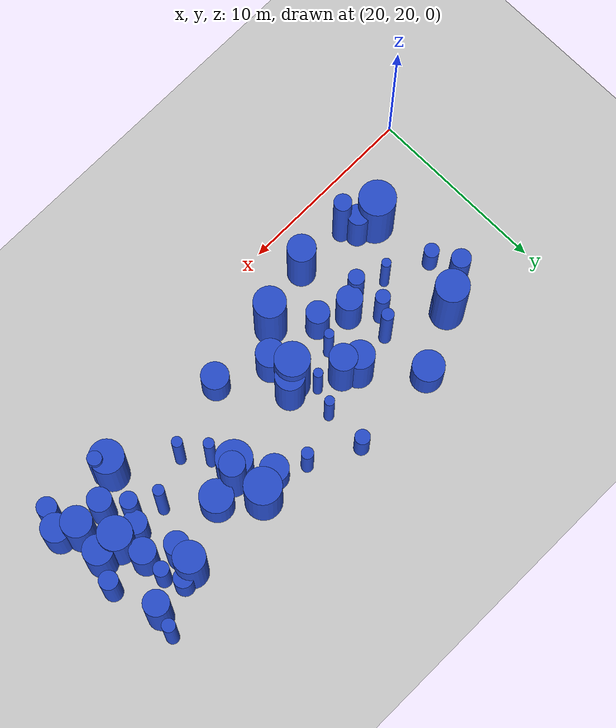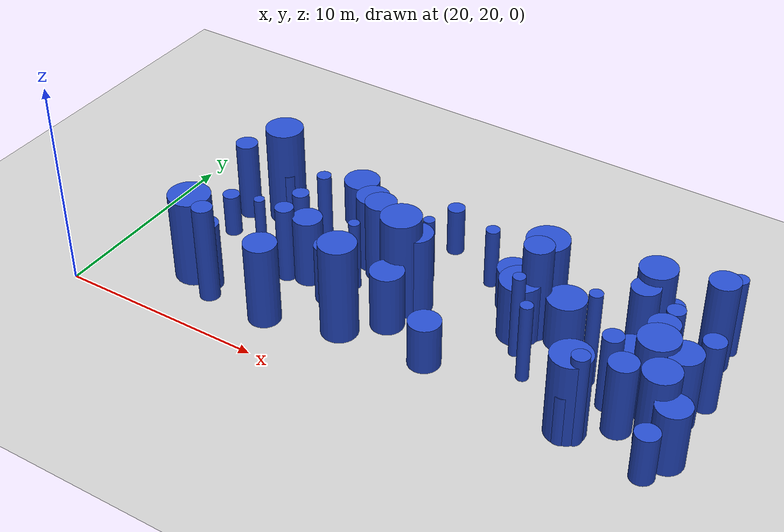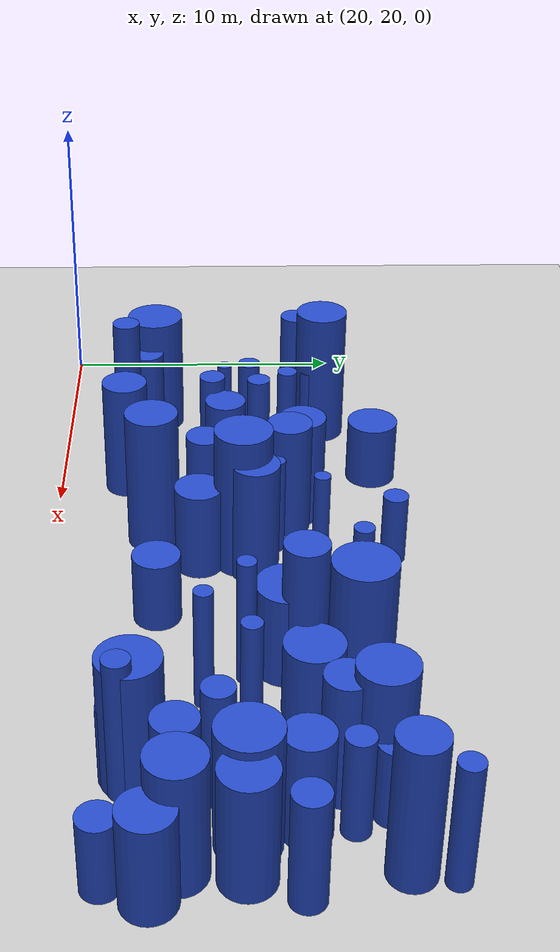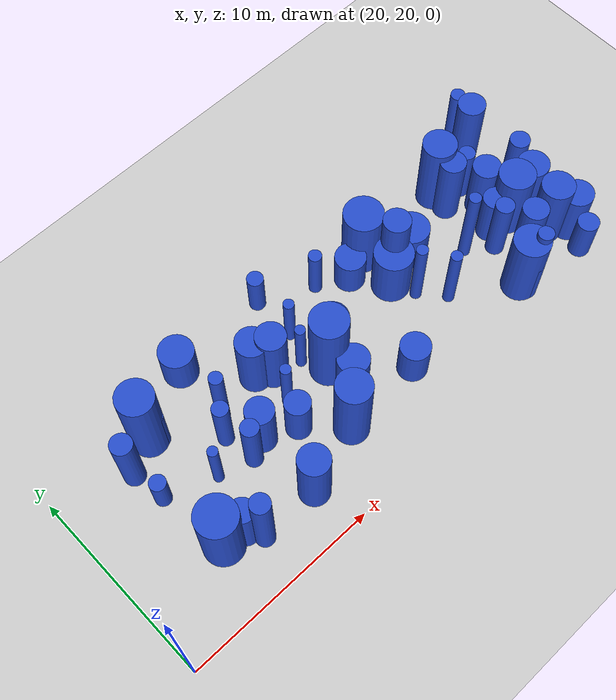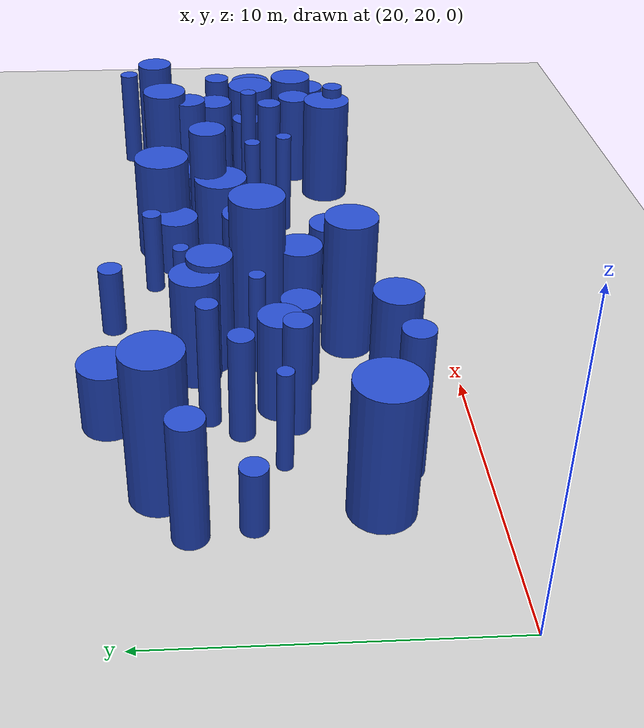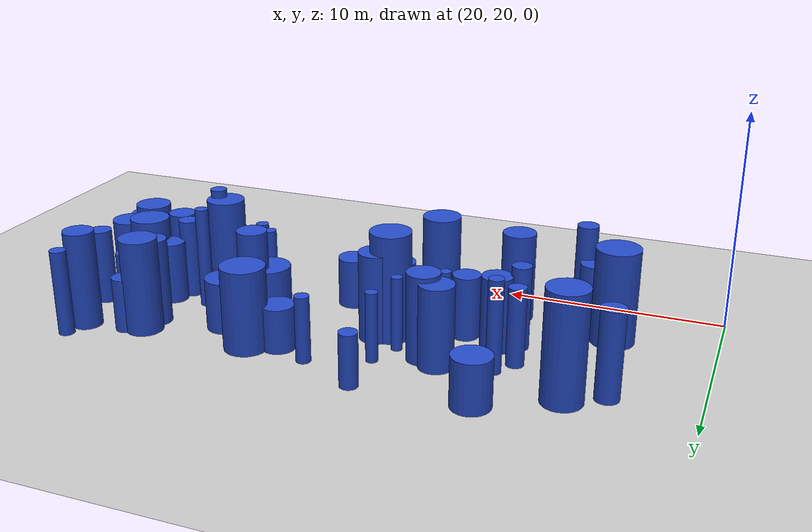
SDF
<sdf version="1.6">
 <world name="default">
  <model name="ground_plane">
   <static>1</static>
   <link name="link">
    <collision name="collision">
     <geometry><plane><normal>0 0 1</normal><size>100 100</size></plane></geometry>
     <surface><friction><ode><mu>100</mu><mu2>50</mu2></ode></friction></surface>
    </collision>
    <visual name="visual">
     <cast_shadows>0</cast_shadows>
     <geometry><plane><normal>0 0 1</normal><size>100 100</size></plane></geometry>
     <material>
      <script><uri>file://media/materials/scripts/gazebo.material</uri><name>Gazebo/Grey</name></script>
     </material>
    </visual>
   </link>
  </model>
  <model name="18">
   <static>0</static>
   <link name="link">
    <inertial>
     <mass>2</mass>
     <inertia>
      <ixx>0.856917</ixx>
      <ixy>0</ixy>
      <ixz>0</ixz>
      <iyy>0.856917</iyy>
      <iyz>0</iyz>
      <izz>0.164802</izz>
     </inertia>
    </inertial>
    <collision name="collision">
     <geometry><cylinder><length>2.15571</length><radius>0.405958</radius></cylinder></geometry>
     <surface><contact><collide_without_contact>1</collide_without_contact></contact></surface>
    </collision>
    <visual name="visual">
     <geometry><cylinder><length>2.15571</length><radius>0.405958</radius></cylinder></geometry>
     <material>
      <script><uri>file://media/materials/scripts/gazebo.material</uri><name>Gazebo/Blue</name></script>
     </material>
    </visual>
    <gravity>0</gravity>
   </link>
   <pose>23.9671 26.7785 1.07786 0 -0 0</pose>
  </model>
  <model name="27">
   <static>0</static>
   <link name="link">
    <inertial>
     <mass>2</mass>
     <inertia><ixx>3.49238</ixx><ixy>0</ixy><ixz>0</ixz><iyy>3.49238</iyy><iyz>0</iyz><izz>0.155393</izz></inertia>
    </inertial>
    <collision name="collision">
     <geometry><cylinder><length>4.52638</length><radius>0.394199</radius></cylinder></geometry>
     <surface><contact><collide_without_contact>1</collide_without_contact></contact></surface>
    </collision>
    <visual name="visual">
     <geometry><cylinder><length>4.52638</length><radius>0.394199</radius></cylinder></geometry>
     <material>
      <script><uri>file://media/materials/scripts/gazebo.material</uri><name>Gazebo/Blue</name></script>
     </material>
    </visual>
    <gravity>0</gravity>
   </link>
   <pose>44.2707 22.8518 2.26319 0 -0 0</pose>
  </model>
  <model name="31">
   <static>0</static>
   <link name="link">
    <inertial>
     <mass>2</mass>
     <inertia>
      <ixx>2.64859</ixx>
      <ixy>0</ixy>
      <ixz>0</ixz>
      <iyy>2.64859</iyy>
      <iyz>0</iyz>
      <izz>0.0843179</izz>
     </inertia>
    </inertial>
    <collision name="collision">
     <geometry><cylinder><length>3.95456</length><radius>0.290376</radius></cylinder></geometry>
     <surface><contact><collide_without_contact>1</collide_without_contact></contact></surface>
    </collision>
    <visual name="visual">
     <geometry><cylinder><length>3.95456</length><radius>0.290376</radius></cylinder></geometry>
     <material>
      <script><uri>file://media/materials/scripts/gazebo.material</uri><name>Gazebo/Blue</name></script>
     </material>
    </visual>
    <gravity>0</gravity>
   </link>
   <pose>40.7251 25.0415 1.97728 0 -0 0</pose>
  </model>
  <model name="41">
   <static>0</static>
   <link name="link">
    <inertial>
     <mass>2</mass>
     <inertia><ixx>2.97421</ixx><ixy>0</ixy><ixz>0</ixz><iyy>2.97421</iyy><iyz>0</iyz><izz>0.995933</izz></inertia>
    </inertial>
    <collision name="collision">
     <geometry><cylinder><length>3.85453</length><radius>0.997964</radius></cylinder></geometry>
     <surface><contact><collide_without_contact>1</collide_without_contact></contact></surface>
    </collision>
    <visual name="visual">
     <geometry><cylinder><length>3.85453</length><radius>0.997964</radius></cylinder></geometry>
     <material>
      <script><uri>file://media/materials/scripts/gazebo.material</uri><name>Gazebo/Blue</name></script>
     </material>
    </visual>
    <gravity>0</gravity>
   </link>
   <pose>39.2735 29.6655 1.92727 0 -0 0</pose>
  </model>
  <model name="54">
   <static>0</static>
   <link name="link">
    <inertial>
     <mass>2</mass>
     <inertia><ixx>1.37638</ixx><ixy>0</ixy><ixz>0</ixz><iyy>1.37638</iyy><iyz>0</iyz><izz>0.821688</izz></inertia>
    </inertial>
    <collision name="collision">
     <geometry><cylinder><length>2.40691</length><radius>0.90647</radius></cylinder></geometry>
     <surface><contact><collide_without_contact>1</collide_without_contact></contact></surface>
    </collision>
    <visual name="visual">
     <geometry><cylinder><length>2.40691</length><radius>0.90647</radius></cylinder></geometry>
     <material>
      <script><uri>file://media/materials/scripts/gazebo.material</uri><name>Gazebo/Blue</name></script>
     </material>
    </visual>
    <gravity>0</gravity>
   </link>
   <pose>41.0887 28.1338 1.20345 0 -0 0</pose>
  </model>
  <model name="60">
   <static>0</static>
   <link name="link">
    <inertial>
     <mass>2</mass>
     <inertia><ixx>2.57815</ixx><ixy>0</ixy><ixz>0</ixz><iyy>2.57815</iyy><iyz>0</iyz><izz>0.193232</izz></inertia>
    </inertial>
    <collision name="collision">
     <geometry><cylinder><length>3.85866</length><radius>0.439582</radius></cylinder></geometry>
     <surface><contact><collide_without_contact>1</collide_without_contact></contact></surface>
    </collision>
    <visual name="visual">
     <geometry><cylinder><length>3.85866</length><radius>0.439582</radius></cylinder></geometry>
     <material>
      <script><uri>file://media/materials/scripts/gazebo.material</uri><name>Gazebo/Blue</name></script>
     </material>
    </visual>
    <gravity>0</gravity>
   </link>
   <pose>28.194 25.362 1.92933 0 -0 0</pose>
  </model>
  <model name="61">
   <static>0</static>
   <link name="link">
    <inertial>
     <mass>2</mass>
     <inertia><ixx>3.67295</ixx><ixy>0</ixy><ixz>0</ixz><iyy>3.67295</iyy><iyz>0</iyz><izz>0.479823</izz></inertia>
    </inertial>
    <collision name="collision">
     <geometry><cylinder><length>4.53853</length><radius>0.692692</radius></cylinder></geometry>
     <surface><contact><collide_without_contact>1</collide_without_contact></contact></surface>
    </collision>
    <visual name="visual">
     <geometry><cylinder><length>4.53853</length><radius>0.692692</radius></cylinder></geometry>
     <material>
      <script><uri>file://media/materials/scripts/gazebo.material</uri><name>Gazebo/Blue</name></script>
     </material>
    </visual>
    <gravity>0</gravity>
   </link>
   <pose>47.1633 30.2094 2.26926 0 -0 0</pose>
  </model>
  <model name="76">
   <static>0</static>
   <link name="link">
    <inertial>
     <mass>2</mass>
     <inertia>
      <ixx>3.85305</ixx>
      <ixy>0</ixy>
      <ixz>0</ixz>
      <iyy>3.85305</iyy>
      <iyz>0</iyz>
      <izz>0.0917923</izz>
     </inertia>
    </inertial>
    <collision name="collision">
     <geometry><cylinder><length>4.77943</length><radius>0.302972</radius></cylinder></geometry>
     <surface><contact><collide_without_contact>1</collide_without_contact></contact></surface>
    </collision>
    <visual name="visual">
     <geometry><cylinder><length>4.77943</length><radius>0.302972</radius></cylinder></geometry>
     <material>
      <script><uri>file://media/materials/scripts/gazebo.material</uri><name>Gazebo/Blue</name></script>
     </material>
    </visual>
    <gravity>0</gravity>
   </link>
   <pose>43.1827 26.3124 2.38971 0 -0 0</pose>
  </model>
  <model name="91">
   <static>0</static>
   <link name="link">
    <inertial>
     <mass>2</mass>
     <inertia><ixx>2.71113</ixx><ixy>0</ixy><ixz>0</ixz><iyy>2.71113</iyy><iyz>0</iyz><izz>0.613025</izz></inertia>
    </inertial>
    <collision name="collision">
     <geometry><cylinder><length>3.79838</length><radius>0.782959</radius></cylinder></geometry>
     <surface><contact><collide_without_contact>1</collide_without_contact></contact></surface>
    </collision>
    <visual name="visual">
     <geometry><cylinder><length>3.79838</length><radius>0.782959</radius></cylinder></geometry>
     <material>
      <script><uri>file://media/materials/scripts/gazebo.material</uri><name>Gazebo/Blue</name></script>
     </material>
    </visual>
    <gravity>0</gravity>
   </link>
   <pose>30.988 28.3636 1.89919 0 -0 0</pose>
  </model>
  <model name="97">
   <static>0</static>
   <link name="link">
    <inertial>
     <mass>2</mass>
     <inertia><ixx>1.88861</ixx><ixy>0</ixy><ixz>0</ixz><iyy>1.88861</iyy><iyz>0</iyz><izz>0.605954</izz></inertia>
    </inertial>
    <collision name="collision">
     <geometry><cylinder><length>3.08444</length><radius>0.778431</radius></cylinder></geometry>
     <surface><contact><collide_without_contact>1</collide_without_contact></contact></surface>
    </collision>
    <visual name="visual">
     <geometry><cylinder><length>3.08444</length><radius>0.778431</radius></cylinder></geometry>
     <material>
      <script><uri>file://media/materials/scripts/gazebo.material</uri><name>Gazebo/Blue</name></script>
     </material>
    </visual>
    <gravity>0</gravity>
   </link>
   <pose>47.974 23.6926 1.54222 0 -0 0</pose>
  </model>
  <model name="105">
   <static>0</static>
   <link name="link">
    <inertial>
     <mass>2</mass>
     <inertia><ixx>2.88866</ixx><ixy>0</ixy><ixz>0</ixz><iyy>2.88866</iyy><iyz>0</iyz><izz>0.686861</izz></inertia>
    </inertial>
    <collision name="collision">
     <geometry><cylinder><length>3.90786</length><radius>0.828771</radius></cylinder></geometry>
     <surface><contact><collide_without_contact>1</collide_without_contact></contact></surface>
    </collision>
    <visual name="visual">
     <geometry><cylinder><length>3.90786</length><radius>0.828771</radius></cylinder></geometry>
     <material>
      <script><uri>file://media/materials/scripts/gazebo.material</uri><name>Gazebo/Blue</name></script>
     </material>
    </visual>
    <gravity>0</gravity>
   </link>
   <pose>47.0756 24.3872 1.95393 0 -0 0</pose>
  </model>
  <model name="119">
   <static>0</static>
   <link name="link">
    <inertial>
     <mass>2</mass>
     <inertia><ixx>1.78265</ixx><ixy>0</ixy><ixz>0</ixz><iyy>1.78265</iyy><iyz>0</iyz><izz>0.442677</izz></inertia>
    </inertial>
    <collision name="collision">
     <geometry><cylinder><length>3.0607</length><radius>0.66534</radius></cylinder></geometry>
     <surface><contact><collide_without_contact>1</collide_without_contact></contact></surface>
    </collision>
    <visual name="visual">
     <geometry><cylinder><length>3.0607</length><radius>0.66534</radius></cylinder></geometry>
     <material>
      <script><uri>file://media/materials/scripts/gazebo.material</uri><name>Gazebo/Blue</name></script>
     </material>
    </visual>
    <gravity>0</gravity>
   </link>
   <pose>44.3315 29.6347 1.53035 0 -0 0</pose>
  </model>
  <model name="121">
   <static>0</static>
   <link name="link">
    <inertial>
     <mass>2</mass>
     <inertia><ixx>4.12307</ixx><ixy>0</ixy><ixz>0</ixz><iyy>4.12307</iyy><iyz>0</iyz><izz>0.229508</izz></inertia>
    </inertial>
    <collision name="collision">
     <geometry><cylinder><length>4.90407</length><radius>0.47907</radius></cylinder></geometry>
     <surface><contact><collide_without_contact>1</collide_without_contact></contact></surface>
    </collision>
    <visual name="visual">
     <geometry><cylinder><length>4.90407</length><radius>0.47907</radius></cylinder></geometry>
     <material>
      <script><uri>file://media/materials/scripts/gazebo.material</uri><name>Gazebo/Blue</name></script>
     </material>
    </visual>
    <gravity>0</gravity>
   </link>
   <pose>26.0768 22.2822 2.45204 0 -0 0</pose>
  </model>
  <model name="145">
   <static>0</static>
   <link name="link">
    <inertial>
     <mass>2</mass>
     <inertia><ixx>2.22804</ixx><ixy>0</ixy><ixz>0</ixz><iyy>2.22804</iyy><iyz>0</iyz><izz>0.260787</izz></inertia>
    </inertial>
    <collision name="collision">
     <geometry><cylinder><length>3.54766</length><radius>0.510673</radius></cylinder></geometry>
     <surface><contact><collide_without_contact>1</collide_without_contact></contact></surface>
    </collision>
    <visual name="visual">
     <geometry><cylinder><length>3.54766</length><radius>0.510673</radius></cylinder></geometry>
     <material>
      <script><uri>file://media/materials/scripts/gazebo.material</uri><name>Gazebo/Blue</name></script>
     </material>
    </visual>
    <gravity>0</gravity>
   </link>
   <pose>47.96 27.5717 1.77383 0 -0 0</pose>
  </model>
  <model name="146">
   <static>0</static>
   <link name="link">
    <inertial>
     <mass>2</mass>
     <inertia><ixx>4.58001</ixx><ixy>0</ixy><ixz>0</ixz><iyy>4.58001</iyy><iyz>0</iyz><izz>0.876721</izz></inertia>
    </inertial>
    <collision name="collision">
     <geometry><cylinder><length>4.98497</length><radius>0.936334</radius></cylinder></geometry>
     <surface><contact><collide_without_contact>1</collide_without_contact></contact></surface>
    </collision>
    <visual name="visual">
     <geometry><cylinder><length>4.98497</length><radius>0.936334</radius></cylinder></geometry>
     <material>
      <script><uri>file://media/materials/scripts/gazebo.material</uri><name>Gazebo/Blue</name></script>
     </material>
    </visual>
    <gravity>0</gravity>
   </link>
   <pose>33.8131 26.3164 2.49248 0 -0 0</pose>
  </model>
  <model name="176">
   <static>0</static>
   <link name="link">
    <inertial>
     <mass>2</mass>
     <inertia>
      <ixx>2.98253</ixx>
      <ixy>0</ixy>
      <ixz>0</ixz>
      <iyy>2.98253</iyy>
      <iyz>0</iyz>
      <izz>0.0840111</izz>
     </inertia>
    </inertial>
    <collision name="collision">
     <geometry><cylinder><length>4.20037</length><radius>0.289847</radius></cylinder></geometry>
     <surface><contact><collide_without_contact>1</collide_without_contact></contact></surface>
    </collision>
    <visual name="visual">
     <geometry><cylinder><length>4.20037</length><radius>0.289847</radius></cylinder></geometry>
     <material>
      <script><uri>file://media/materials/scripts/gazebo.material</uri><name>Gazebo/Blue</name></script>
     </material>
    </visual>
    <gravity>0</gravity>
   </link>
   <pose>39.6881 26.2708 2.10019 0 -0 0</pose>
  </model>
  <model name="180">
   <static>0</static>
   <link name="link">
    <inertial>
     <mass>2</mass>
     <inertia><ixx>1.81639</ixx><ixy>0</ixy><ixz>0</ixz><iyy>1.81639</iyy><iyz>0</iyz><izz>0.617239</izz></inertia>
    </inertial>
    <collision name="collision">
     <geometry><cylinder><length>3.00776</length><radius>0.785645</radius></cylinder></geometry>
     <surface><contact><collide_without_contact>1</collide_without_contact></contact></surface>
    </collision>
    <visual name="visual">
     <geometry><cylinder><length>3.00776</length><radius>0.785645</radius></cylinder></geometry>
     <material>
      <script><uri>file://media/materials/scripts/gazebo.material</uri><name>Gazebo/Blue</name></script>
     </material>
    </visual>
    <gravity>0</gravity>
   </link>
   <pose>33.9865 24.8999 1.50388 0 -0 0</pose>
  </model>
  <model name="191">
   <static>0</static>
   <link name="link">
    <inertial>
     <mass>2</mass>
     <inertia><ixx>3.06221</ixx><ixy>0</ixy><ixz>0</ixz><iyy>3.06221</iyy><iyz>0</iyz><izz>0.112457</izz></inertia>
    </inertial>
    <collision name="collision">
     <geometry><cylinder><length>4.24687</length><radius>0.335345</radius></cylinder></geometry>
     <surface><contact><collide_without_contact>1</collide_without_contact></contact></surface>
    </collision>
    <visual name="visual">
     <geometry><cylinder><length>4.24687</length><radius>0.335345</radius></cylinder></geometry>
     <material>
      <script><uri>file://media/materials/scripts/gazebo.material</uri><name>Gazebo/Blue</name></script>
     </material>
    </visual>
    <gravity>0</gravity>
   </link>
   <pose>28.5854 27.954 2.12343 0 -0 0</pose>
  </model>
  <model name="201">
   <static>0</static>
   <link name="link">
    <inertial>
     <mass>2</mass>
     <inertia><ixx>4.50665</ixx><ixy>0</ixy><ixz>0</ixz><iyy>4.50665</iyy><iyz>0</iyz><izz>0.813506</izz></inertia>
    </inertial>
    <collision name="collision">
     <geometry><cylinder><length>4.95977</length><radius>0.901946</radius></cylinder></geometry>
     <surface><contact><collide_without_contact>1</collide_without_contact></contact></surface>
    </collision>
    <visual name="visual">
     <geometry><cylinder><length>4.95977</length><radius>0.901946</radius></cylinder></geometry>
     <material>
      <script><uri>file://media/materials/scripts/gazebo.material</uri><name>Gazebo/Blue</name></script>
     </material>
    </visual>
    <gravity>0</gravity>
   </link>
   <pose>25.3569 29.3603 2.47989 0 -0 0</pose>
  </model>
  <model name="207">
   <static>0</static>
   <link name="link">
    <inertial>
     <mass>2</mass>
     <inertia><ixx>1.96965</ixx><ixy>0</ixy><ixz>0</ixz><iyy>1.96965</iyy><iyz>0</iyz><izz>0.066463</izz></inertia>
    </inertial>
    <collision name="collision">
     <geometry><cylinder><length>3.40859</length><radius>0.257804</radius></cylinder></geometry>
     <surface><contact><collide_without_contact>1</collide_without_contact></contact></surface>
    </collision>
    <visual name="visual">
     <geometry><cylinder><length>3.40859</length><radius>0.257804</radius></cylinder></geometry>
     <material>
      <script><uri>file://media/materials/scripts/gazebo.material</uri><name>Gazebo/Blue</name></script>
     </material>
    </visual>
    <gravity>0</gravity>
   </link>
   <pose>33.0915 27.4491 1.7043 0 -0 0</pose>
  </model>
  <model name="210">
   <static>0</static>
   <link name="link">
    <inertial>
     <mass>2</mass>
     <inertia><ixx>2.96356</ixx><ixy>0</ixy><ixz>0</ixz><iyy>2.96356</iyy><iyz>0</iyz><izz>0.550999</izz></inertia>
    </inertial>
    <collision name="collision">
     <geometry><cylinder><length>4.01601</length><radius>0.742293</radius></cylinder></geometry>
     <surface><contact><collide_without_contact>1</collide_without_contact></contact></surface>
    </collision>
    <visual name="visual">
     <geometry><cylinder><length>4.01601</length><radius>0.742293</radius></cylinder></geometry>
     <material>
      <script><uri>file://media/materials/scripts/gazebo.material</uri><name>Gazebo/Blue</name></script>
     </material>
    </visual>
    <gravity>0</gravity>
   </link>
   <pose>31.7293 27.8933 2.00801 0 -0 0</pose>
  </model>
  <model name="219">
   <static>0</static>
   <link name="link">
    <inertial>
     <mass>2</mass>
     <inertia><ixx>2.01383</ixx><ixy>0</ixy><ixz>0</ixz><iyy>2.01383</iyy><iyz>0</iyz><izz>0.96174</izz></inertia>
    </inertial>
    <collision name="collision">
     <geometry><cylinder><length>3.03278</length><radius>0.980683</radius></cylinder></geometry>
     <surface><contact><collide_without_contact>1</collide_without_contact></contact></surface>
    </collision>
    <visual name="visual">
     <geometry><cylinder><length>3.03278</length><radius>0.980683</radius></cylinder></geometry>
     <material>
      <script><uri>file://media/materials/scripts/gazebo.material</uri><name>Gazebo/Blue</name></script>
     </material>
    </visual>
    <gravity>0</gravity>
   </link>
   <pose>39.1737 27.4911 1.51639 0 -0 0</pose>
  </model>
  <model name="221">
   <static>0</static>
   <link name="link">
    <inertial>
     <mass>2</mass>
     <inertia><ixx>1.18725</ixx><ixy>0</ixy><ixz>0</ixz><iyy>1.18725</iyy><iyz>0</iyz><izz>0.565882</izz></inertia>
    </inertial>
    <collision name="collision">
     <geometry><cylinder><length>2.32934</length><radius>0.752251</radius></cylinder></geometry>
     <surface><contact><collide_without_contact>1</collide_without_contact></contact></surface>
    </collision>
    <visual name="visual">
     <geometry><cylinder><length>2.32934</length><radius>0.752251</radius></cylinder></geometry>
     <material>
      <script><uri>file://media/materials/scripts/gazebo.material</uri><name>Gazebo/Blue</name></script>
     </material>
    </visual>
    <gravity>0</gravity>
   </link>
   <pose>36.7152 23.5989 1.16467 0 -0 0</pose>
  </model>
  <model name="242">
   <static>0</static>
   <link name="link">
    <inertial>
     <mass>2</mass>
     <inertia><ixx>3.59243</ixx><ixy>0</ixy><ixz>0</ixz><iyy>3.59243</iyy><iyz>0</iyz><izz>0.726061</izz></inertia>
    </inertial>
    <collision name="collision">
     <geometry><cylinder><length>4.40186</length><radius>0.852092</radius></cylinder></geometry>
     <surface><contact><collide_without_contact>1</collide_without_contact></contact></surface>
    </collision>
    <visual name="visual">
     <geometry><cylinder><length>4.40186</length><radius>0.852092</radius></cylinder></geometry>
     <material>
      <script><uri>file://media/materials/scripts/gazebo.material</uri><name>Gazebo/Blue</name></script>
     </material>
    </visual>
    <gravity>0</gravity>
   </link>
   <pose>44.4245 29.7088 2.20093 0 -0 0</pose>
  </model>
  <model name="248">
   <static>0</static>
   <link name="link">
    <inertial>
     <mass>2</mass>
     <inertia><ixx>2.70177</ixx><ixy>0</ixy><ixz>0</ixz><iyy>2.70177</iyy><iyz>0</iyz><izz>0.130531</izz></inertia>
    </inertial>
    <collision name="collision">
     <geometry><cylinder><length>3.97731</length><radius>0.36129</radius></cylinder></geometry>
     <surface><contact><collide_without_contact>1</collide_without_contact></contact></surface>
    </collision>
    <visual name="visual">
     <geometry><cylinder><length>3.97731</length><radius>0.36129</radius></cylinder></geometry>
     <material>
      <script><uri>file://media/materials/scripts/gazebo.material</uri><name>Gazebo/Blue</name></script>
     </material>
    </visual>
    <gravity>0</gravity>
   </link>
   <pose>47.4611 31.3452 1.98866 0 -0 0</pose>
  </model>
  <model name="253">
   <static>0</static>
   <link name="link">
    <inertial>
     <mass>2</mass>
     <inertia>
      <ixx>2.13801</ixx>
      <ixy>0</ixy>
      <ixz>0</ixz>
      <iyy>2.13801</iyy>
      <iyz>0</iyz>
      <izz>0.0712298</izz>
     </inertia>
    </inertial>
    <collision name="collision">
     <geometry><cylinder><length>3.55167</length><radius>0.266889</radius></cylinder></geometry>
     <surface><contact><collide_without_contact>1</collide_without_contact></contact></surface>
    </collision>
    <visual name="visual">
     <geometry><cylinder><length>3.55167</length><radius>0.266889</radius></cylinder></geometry>
     <material>
      <script><uri>file://media/materials/scripts/gazebo.material</uri><name>Gazebo/Blue</name></script>
     </material>
    </visual>
    <gravity>0</gravity>
   </link>
   <pose>31.2595 26.4206 1.77584 0 -0 0</pose>
  </model>
  <model name="254">
   <static>0</static>
   <link name="link">
    <inertial>
     <mass>2</mass>
     <inertia><ixx>4.03294</ixx><ixy>0</ixy><ixz>0</ixz><iyy>4.03294</iyy><iyz>0</iyz><izz>0.460344</izz></inertia>
    </inertial>
    <collision name="collision">
     <geometry><cylinder><length>4.77667</length><radius>0.678487</radius></cylinder></geometry>
     <surface><contact><collide_without_contact>1</collide_without_contact></contact></surface>
    </collision>
    <visual name="visual">
     <geometry><cylinder><length>4.77667</length><radius>0.678487</radius></cylinder></geometry>
     <material>
      <script><uri>file://media/materials/scripts/gazebo.material</uri><name>Gazebo/Blue</name></script>
     </material>
    </visual>
    <gravity>0</gravity>
   </link>
   <pose>39.6954 27.9468 2.38834 0 -0 0</pose>
  </model>
  <model name="262">
   <static>0</static>
   <link name="link">
    <inertial>
     <mass>2</mass>
     <inertia><ixx>1.22707</ixx><ixy>0</ixy><ixz>0</ixz><iyy>1.22707</iyy><iyz>0</iyz><izz>0.752908</izz></inertia>
    </inertial>
    <collision name="collision">
     <geometry><cylinder><length>2.25913</length><radius>0.867703</radius></cylinder></geometry>
     <surface><contact><collide_without_contact>1</collide_without_contact></contact></surface>
    </collision>
    <visual name="visual">
     <geometry><cylinder><length>2.25913</length><radius>0.867703</radius></cylinder></geometry>
     <material>
      <script><uri>file://media/materials/scripts/gazebo.material</uri><name>Gazebo/Blue</name></script>
     </material>
    </visual>
    <gravity>0</gravity>
   </link>
   <pose>28.6076 31.0031 1.12957 0 -0 0</pose>
  </model>
  <model name="270">
   <static>0</static>
   <link name="link">
    <inertial>
     <mass>2</mass>
     <inertia><ixx>1.16716</ixx><ixy>0</ixy><ixz>0</ixz><iyy>1.16716</iyy><iyz>0</iyz><izz>0.209928</izz></inertia>
    </inertial>
    <collision name="collision">
     <geometry><cylinder><length>2.52452</length><radius>0.458179</radius></cylinder></geometry>
     <surface><contact><collide_without_contact>1</collide_without_contact></contact></surface>
    </collision>
    <visual name="visual">
     <geometry><cylinder><length>2.52452</length><radius>0.458179</radius></cylinder></geometry>
     <material>
      <script><uri>file://media/materials/scripts/gazebo.material</uri><name>Gazebo/Blue</name></script>
     </material>
    </visual>
    <gravity>0</gravity>
   </link>
   <pose>43.7921 22.6436 1.26226 0 -0 0</pose>
  </model>
  <model name="286">
   <static>0</static>
   <link name="link">
    <inertial>
     <mass>2</mass>
     <inertia><ixx>1.07308</ixx><ixy>0</ixy><ixz>0</ixz><iyy>1.07308</iyy><iyz>0</iyz><izz>0.170265</izz></inertia>
    </inertial>
    <collision name="collision">
     <geometry><cylinder><length>2.43468</length><radius>0.412632</radius></cylinder></geometry>
     <surface><contact><collide_without_contact>1</collide_without_contact></contact></surface>
    </collision>
    <visual name="visual">
     <geometry><cylinder><length>2.43468</length><radius>0.412632</radius></cylinder></geometry>
     <material>
      <script><uri>file://media/materials/scripts/gazebo.material</uri><name>Gazebo/Blue</name></script>
     </material>
    </visual>
    <gravity>0</gravity>
   </link>
   <pose>33.7172 31.2412 1.21734 0 -0 0</pose>
  </model>
  <model name="298">
   <static>0</static>
   <link name="link">
    <inertial>
     <mass>2</mass>
     <inertia><ixx>2.47872</ixx><ixy>0</ixy><ixz>0</ixz><iyy>2.47872</iyy><iyz>0</iyz><izz>0.220502</izz></inertia>
    </inertial>
    <collision name="collision">
     <geometry><cylinder><length>3.76973</length><radius>0.469577</radius></cylinder></geometry>
     <surface><contact><collide_without_contact>1</collide_without_contact></contact></surface>
    </collision>
    <visual name="visual">
     <geometry><cylinder><length>3.76973</length><radius>0.469577</radius></cylinder></geometry>
     <material>
      <script><uri>file://media/materials/scripts/gazebo.material</uri><name>Gazebo/Blue</name></script>
     </material>
    </visual>
    <gravity>0</gravity>
   </link>
   <pose>44.4818 25.4246 1.88486 0 -0 0</pose>
  </model>
  <model name="308">
   <static>0</static>
   <link name="link">
    <inertial>
     <mass>2</mass>
     <inertia><ixx>1.19241</ixx><ixy>0</ixy><ixz>0</ixz><iyy>1.19241</iyy><iyz>0</iyz><izz>0.281239</izz></inertia>
    </inertial>
    <collision name="collision">
     <geometry><cylinder><length>2.51212</length><radius>0.53032</radius></cylinder></geometry>
     <surface><contact><collide_without_contact>1</collide_without_contact></contact></surface>
    </collision>
    <visual name="visual">
     <geometry><cylinder><length>2.51212</length><radius>0.53032</radius></cylinder></geometry>
     <material>
      <script><uri>file://media/materials/scripts/gazebo.material</uri><name>Gazebo/Blue</name></script>
     </material>
    </visual>
    <gravity>0</gravity>
   </link>
   <pose>45.1942 29.9485 1.25606 0 -0 0</pose>
  </model>
  <model name="324">
   <static>0</static>
   <link name="link">
    <inertial>
     <mass>2</mass>
     <inertia><ixx>2.56444</ixx><ixy>0</ixy><ixz>0</ixz><iyy>2.56444</iyy><iyz>0</iyz><izz>0.640169</izz></inertia>
    </inertial>
    <collision name="collision">
     <geometry><cylinder><length>3.66962</length><radius>0.800106</radius></cylinder></geometry>
     <surface><contact><collide_without_contact>1</collide_without_contact></contact></surface>
    </collision>
    <visual name="visual">
     <geometry><cylinder><length>3.66962</length><radius>0.800106</radius></cylinder></geometry>
     <material>
      <script><uri>file://media/materials/scripts/gazebo.material</uri><name>Gazebo/Blue</name></script>
     </material>
    </visual>
    <gravity>0</gravity>
   </link>
   <pose>47.293 26.1185 1.83481 0 -0 0</pose>
  </model>
  <model name="329">
   <static>0</static>
   <link name="link">
    <inertial>
     <mass>2</mass>
     <inertia><ixx>2.1403</ixx><ixy>0</ixy><ixz>0</ixz><iyy>2.1403</iyy><iyz>0</iyz><izz>0.499981</izz></inertia>
    </inertial>
    <collision name="collision">
     <geometry><cylinder><length>3.36777</length><radius>0.707093</radius></cylinder></geometry>
     <surface><contact><collide_without_contact>1</collide_without_contact></contact></surface>
    </collision>
    <visual name="visual">
     <geometry><cylinder><length>3.36777</length><radius>0.707093</radius></cylinder></geometry>
     <material>
      <script><uri>file://media/materials/scripts/gazebo.material</uri><name>Gazebo/Blue</name></script>
     </material>
    </visual>
    <gravity>0</gravity>
   </link>
   <pose>45.7338 27.6737 1.68388 0 -0 0</pose>
  </model>
  <model name="335">
   <static>0</static>
   <link name="link">
    <inertial>
     <mass>2</mass>
     <inertia><ixx>1.62388</ixx><ixy>0</ixy><ixz>0</ixz><iyy>1.62388</iyy><iyz>0</iyz><izz>0.408084</izz></inertia>
    </inertial>
    <collision name="collision">
     <geometry><cylinder><length>2.91873</length><radius>0.638815</radius></cylinder></geometry>
     <surface><contact><collide_without_contact>1</collide_without_contact></contact></surface>
    </collision>
    <visual name="visual">
     <geometry><cylinder><length>2.91873</length><radius>0.638815</radius></cylinder></geometry>
     <material>
      <script><uri>file://media/materials/scripts/gazebo.material</uri><name>Gazebo/Blue</name></script>
     </material>
    </visual>
    <gravity>0</gravity>
   </link>
   <pose>44.9638 26.2943 1.45937 0 -0 0</pose>
  </model>
  <model name="337">
   <static>0</static>
   <link name="link">
    <inertial>
     <mass>2</mass>
     <inertia><ixx>1.65459</ixx><ixy>0</ixy><ixz>0</ixz><iyy>1.65459</iyy><iyz>0</iyz><izz>0.401116</izz></inertia>
    </inertial>
    <collision name="collision">
     <geometry><cylinder><length>2.95368</length><radius>0.633337</radius></cylinder></geometry>
     <surface><contact><collide_without_contact>1</collide_without_contact></contact></surface>
    </collision>
    <visual name="visual">
     <geometry><cylinder><length>2.95368</length><radius>0.633337</radius></cylinder></geometry>
     <material>
      <script><uri>file://media/materials/scripts/gazebo.material</uri><name>Gazebo/Blue</name></script>
     </material>
    </visual>
    <gravity>0</gravity>
   </link>
   <pose>30.7199 25.0873 1.47684 0 -0 0</pose>
  </model>
  <model name="339">
   <static>0</static>
   <link name="link">
    <inertial>
     <mass>2</mass>
     <inertia><ixx>2.81788</ixx><ixy>0</ixy><ixz>0</ixz><iyy>2.81788</iyy><iyz>0</iyz><izz>0.279734</izz></inertia>
    </inertial>
    <collision name="collision">
     <geometry><cylinder><length>4.0085</length><radius>0.528899</radius></cylinder></geometry>
     <surface><contact><collide_without_contact>1</collide_without_contact></contact></surface>
    </collision>
    <visual name="visual">
     <geometry><cylinder><length>4.0085</length><radius>0.528899</radius></cylinder></geometry>
     <material>
      <script><uri>file://media/materials/scripts/gazebo.material</uri><name>Gazebo/Blue</name></script>
     </material>
    </visual>
    <gravity>0</gravity>
   </link>
   <pose>23.725 28.4959 2.00425 0 -0 0</pose>
  </model>
  <model name="341">
   <static>0</static>
   <link name="link">
    <inertial>
     <mass>2</mass>
     <inertia><ixx>3.29598</ixx><ixy>0</ixy><ixz>0</ixz><iyy>3.29598</iyy><iyz>0</iyz><izz>0.835916</izz></inertia>
    </inertial>
    <collision name="collision">
     <geometry><cylinder><length>4.15549</length><radius>0.914284</radius></cylinder></geometry>
     <surface><contact><collide_without_contact>1</collide_without_contact></contact></surface>
    </collision>
    <visual name="visual">
     <geometry><cylinder><length>4.15549</length><radius>0.914284</radius></cylinder></geometry>
     <material>
      <script><uri>file://media/materials/scripts/gazebo.material</uri><name>Gazebo/Blue</name></script>
     </material>
    </visual>
    <gravity>0</gravity>
   </link>
   <pose>43.7511 23.1284 2.07775 0 -0 0</pose>
  </model>
  <model name="344">
   <static>0</static>
   <link name="link">
    <inertial>
     <mass>2</mass>
     <inertia><ixx>2.98603</ixx><ixy>0</ixy><ixz>0</ixz><iyy>2.98603</iyy><iyz>0</iyz><izz>0.838018</izz></inertia>
    </inertial>
    <collision name="collision">
     <geometry><cylinder><length>3.92456</length><radius>0.915433</radius></cylinder></geometry>
     <surface><contact><collide_without_contact>1</collide_without_contact></contact></surface>
    </collision>
    <visual name="visual">
     <geometry><cylinder><length>3.92456</length><radius>0.915433</radius></cylinder></geometry>
     <material>
      <script><uri>file://media/materials/scripts/gazebo.material</uri><name>Gazebo/Blue</name></script>
     </material>
    </visual>
    <gravity>0</gravity>
   </link>
   <pose>46.1329 26.1625 1.96228 0 -0 0</pose>
  </model>
  <model name="345">
   <static>0</static>
   <link name="link">
    <inertial>
     <mass>2</mass>
     <inertia>
      <ixx>1.73797</ixx>
      <ixy>0</ixy>
      <ixz>0</ixz>
      <iyy>1.73797</iyy>
      <iyz>0</iyz>
      <izz>0.0731037</izz>
     </inertia>
    </inertial>
    <collision name="collision">
     <geometry><cylinder><length>3.19508</length><radius>0.270377</radius></cylinder></geometry>
     <surface><contact><collide_without_contact>1</collide_without_contact></contact></surface>
    </collision>
    <visual name="visual">
     <geometry><cylinder><length>3.19508</length><radius>0.270377</radius></cylinder></geometry>
     <material>
      <script><uri>file://media/materials/scripts/gazebo.material</uri><name>Gazebo/Blue</name></script>
     </material>
    </visual>
    <gravity>0</gravity>
   </link>
   <pose>33.6871 28.8528 1.59754 0 -0 0</pose>
  </model>
  <model name="364">
   <static>0</static>
   <link name="link">
    <inertial>
     <mass>2</mass>
     <inertia><ixx>2.13431</ixx><ixy>0</ixy><ixz>0</ixz><iyy>2.13431</iyy><iyz>0</iyz><izz>0.348801</izz></inertia>
    </inertial>
    <collision name="collision">
     <geometry><cylinder><length>3.42921</length><radius>0.590593</radius></cylinder></geometry>
     <surface><contact><collide_without_contact>1</collide_without_contact></contact></surface>
    </collision>
    <visual name="visual">
     <geometry><cylinder><length>3.42921</length><radius>0.590593</radius></cylinder></geometry>
     <material>
      <script><uri>file://media/materials/scripts/gazebo.material</uri><name>Gazebo/Blue</name></script>
     </material>
    </visual>
    <gravity>0</gravity>
   </link>
   <pose>25.5845 22.9805 1.7146 0 -0 0</pose>
  </model>
  <model name="372">
   <static>0</static>
   <link name="link">
    <inertial>
     <mass>2</mass>
     <inertia><ixx>1.11184</ixx><ixy>0</ixy><ixz>0</ixz><iyy>1.11184</iyy><iyz>0</iyz><izz>0.296746</izz></inertia>
    </inertial>
    <collision name="collision">
     <geometry><cylinder><length>2.40433</length><radius>0.544744</radius></cylinder></geometry>
     <surface><contact><collide_without_contact>1</collide_without_contact></contact></surface>
    </collision>
    <visual name="visual">
     <geometry><cylinder><length>2.40433</length><radius>0.544744</radius></cylinder></geometry>
     <material>
      <script><uri>file://media/materials/scripts/gazebo.material</uri><name>Gazebo/Blue</name></script>
     </material>
    </visual>
    <gravity>0</gravity>
   </link>
   <pose>47.5027 22.4713 1.20216 0 -0 0</pose>
  </model>
  <model name="380">
   <static>0</static>
   <link name="link">
    <inertial>
     <mass>2</mass>
     <inertia><ixx>2.19177</ixx><ixy>0</ixy><ixz>0</ixz><iyy>2.19177</iyy><iyz>0</iyz><izz>0.48391</izz></inertia>
    </inertial>
    <collision name="collision">
     <geometry><cylinder><length>3.42036</length><radius>0.695636</radius></cylinder></geometry>
     <surface><contact><collide_without_contact>1</collide_without_contact></contact></surface>
    </collision>
    <visual name="visual">
     <geometry><cylinder><length>3.42036</length><radius>0.695636</radius></cylinder></geometry>
     <material>
      <script><uri>file://media/materials/scripts/gazebo.material</uri><name>Gazebo/Blue</name></script>
     </material>
    </visual>
    <gravity>0</gravity>
   </link>
   <pose>29.1313 25.8075 1.71018 0 -0 0</pose>
  </model>
  <model name="384">
   <static>0</static>
   <link name="link">
    <inertial>
     <mass>2</mass>
     <inertia><ixx>1.34319</ixx><ixy>0</ixy><ixz>0</ixz><iyy>1.34319</iyy><iyz>0</iyz><izz>0.178367</izz></inertia>
    </inertial>
    <collision name="collision">
     <geometry><cylinder><length>2.743</length><radius>0.422335</radius></cylinder></geometry>
     <surface><contact><collide_without_contact>1</collide_without_contact></contact></surface>
    </collision>
    <visual name="visual">
     <geometry><cylinder><length>2.743</length><radius>0.422335</radius></cylinder></geometry>
     <material>
      <script><uri>file://media/materials/scripts/gazebo.material</uri><name>Gazebo/Blue</name></script>
     </material>
    </visual>
    <gravity>0</gravity>
   </link>
   <pose>25.729 29.0057 1.3715 0 -0 0</pose>
  </model>
  <model name="385">
   <static>0</static>
   <link name="link">
    <inertial>
     <mass>2</mass>
     <inertia><ixx>1.00958</ixx><ixy>0</ixy><ixz>0</ixz><iyy>1.00958</iyy><iyz>0</iyz><izz>0.601562</izz></inertia>
    </inertial>
    <collision name="collision">
     <geometry><cylinder><length>2.06222</length><radius>0.775604</radius></cylinder></geometry>
     <surface><contact><collide_without_contact>1</collide_without_contact></contact></surface>
    </collision>
    <visual name="visual">
     <geometry><cylinder><length>2.06222</length><radius>0.775604</radius></cylinder></geometry>
     <material>
      <script><uri>file://media/materials/scripts/gazebo.material</uri><name>Gazebo/Blue</name></script>
     </material>
    </visual>
    <gravity>0</gravity>
   </link>
   <pose>37.9562 29.1395 1.03111 0 -0 0</pose>
  </model>
  <model name="391">
   <static>0</static>
   <link name="link">
    <inertial>
     <mass>2</mass>
     <inertia><ixx>2.90664</ixx><ixy>0</ixy><ixz>0</ixz><iyy>2.90664</iyy><iyz>0</iyz><izz>0.428801</izz></inertia>
    </inertial>
    <collision name="collision">
     <geometry><cylinder><length>4.01913</length><radius>0.654829</radius></cylinder></geometry>
     <surface><contact><collide_without_contact>1</collide_without_contact></contact></surface>
    </collision>
    <visual name="visual">
     <geometry><cylinder><length>4.01913</length><radius>0.654829</radius></cylinder></geometry>
     <material>
      <script><uri>file://media/materials/scripts/gazebo.material</uri><name>Gazebo/Blue</name></script>
     </material>
    </visual>
    <gravity>0</gravity>
   </link>
   <pose>44.3527 28.7195 2.00957 0 -0 0</pose>
  </model>
  <model name="400">
   <static>0</static>
   <link name="link">
    <inertial>
     <mass>2</mass>
     <inertia><ixx>3.18129</ixx><ixy>0</ixy><ixz>0</ixz><iyy>3.18129</iyy><iyz>0</iyz><izz>0.585498</izz></inertia>
    </inertial>
    <collision name="collision">
     <geometry><cylinder><length>4.16308</length><radius>0.765178</radius></cylinder></geometry>
     <surface><contact><collide_without_contact>1</collide_without_contact></contact></surface>
    </collision>
    <visual name="visual">
     <geometry><cylinder><length>4.16308</length><radius>0.765178</radius></cylinder></geometry>
     <material>
      <script><uri>file://media/materials/scripts/gazebo.material</uri><name>Gazebo/Blue</name></script>
     </material>
    </visual>
    <gravity>0</gravity>
   </link>
   <pose>29.1295 22.3374 2.08154 0 -0 0</pose>
  </model>
  <model name="418">
   <static>0</static>
   <link name="link">
    <inertial>
     <mass>2</mass>
     <inertia><ixx>2.21574</ixx><ixy>0</ixy><ixz>0</ixz><iyy>2.21574</iyy><iyz>0</iyz><izz>0.159576</izz></inertia>
    </inertial>
    <collision name="collision">
     <geometry><cylinder><length>3.5799</length><radius>0.39947</radius></cylinder></geometry>
     <surface><contact><collide_without_contact>1</collide_without_contact></contact></surface>
    </collision>
    <visual name="visual">
     <geometry><cylinder><length>3.5799</length><radius>0.39947</radius></cylinder></geometry>
     <material>
      <script><uri>file://media/materials/scripts/gazebo.material</uri><name>Gazebo/Blue</name></script>
     </material>
    </visual>
    <gravity>0</gravity>
   </link>
   <pose>27.9188 26.9982 1.78995 0 -0 0</pose>
  </model>
  <model name="446">
   <static>0</static>
   <link name="link">
    <inertial>
     <mass>2</mass>
     <inertia><ixx>2.42242</ixx><ixy>0</ixy><ixz>0</ixz><iyy>2.42242</iyy><iyz>0</iyz><izz>0.426894</izz></inertia>
    </inertial>
    <collision name="collision">
     <geometry><cylinder><length>3.64058</length><radius>0.653371</radius></cylinder></geometry>
     <surface><contact><collide_without_contact>1</collide_without_contact></contact></surface>
    </collision>
    <visual name="visual">
     <geometry><cylinder><length>3.64058</length><radius>0.653371</radius></cylinder></geometry>
     <material>
      <script><uri>file://media/materials/scripts/gazebo.material</uri><name>Gazebo/Blue</name></script>
     </material>
    </visual>
    <gravity>0</gravity>
   </link>
   <pose>45.4754 24.3383 1.82029 0 -0 0</pose>
  </model>
  <model name="449">
   <static>0</static>
   <link name="link">
    <inertial>
     <mass>2</mass>
     <inertia><ixx>1.58969</ixx><ixy>0</ixy><ixz>0</ixz><iyy>1.58969</iyy><iyz>0</iyz><izz>0.108569</izz></inertia>
    </inertial>
    <collision name="collision">
     <geometry><cylinder><length>3.0352</length><radius>0.329498</radius></cylinder></geometry>
     <surface><contact><collide_without_contact>1</collide_without_contact></contact></surface>
    </collision>
    <visual name="visual">
     <geometry><cylinder><length>3.0352</length><radius>0.329498</radius></cylinder></geometry>
     <material>
      <script><uri>file://media/materials/scripts/gazebo.material</uri><name>Gazebo/Blue</name></script>
     </material>
    </visual>
    <gravity>0</gravity>
   </link>
   <pose>36.3832 29.9417 1.5176 0 -0 0</pose>
  </model>
  <model name="453">
   <static>0</static>
   <link name="link">
    <inertial>
     <mass>2</mass>
     <inertia><ixx>1.80558</ixx><ixy>0</ixy><ixz>0</ixz><iyy>1.80558</iyy><iyz>0</iyz><izz>0.176231</izz></inertia>
    </inertial>
    <collision name="collision">
     <geometry><cylinder><length>3.21011</length><radius>0.419798</radius></cylinder></geometry>
     <surface><contact><collide_without_contact>1</collide_without_contact></contact></surface>
    </collision>
    <visual name="visual">
     <geometry><cylinder><length>3.21011</length><radius>0.419798</radius></cylinder></geometry>
     <material>
      <script><uri>file://media/materials/scripts/gazebo.material</uri><name>Gazebo/Blue</name></script>
     </material>
    </visual>
    <gravity>0</gravity>
   </link>
   <pose>45.7105 28.9509 1.60505 0 -0 0</pose>
  </model>
  <model name="477">
   <static>0</static>
   <link name="link">
    <inertial>
     <mass>2</mass>
     <inertia>
      <ixx>2.08275</ixx>
      <ixy>0</ixy>
      <ixz>0</ixz>
      <iyy>2.08275</iyy>
      <iyz>0</iyz>
      <izz>0.0901016</izz>
     </inertia>
    </inertial>
    <collision name="collision">
     <geometry><cylinder><length>3.4966</length><radius>0.300169</radius></cylinder></geometry>
     <surface><contact><collide_without_contact>1</collide_without_contact></contact></surface>
    </collision>
    <visual name="visual">
     <geometry><cylinder><length>3.4966</length><radius>0.300169</radius></cylinder></geometry>
     <material>
      <script><uri>file://media/materials/scripts/gazebo.material</uri><name>Gazebo/Blue</name></script>
     </material>
    </visual>
    <gravity>0</gravity>
   </link>
   <pose>31.7075 27.6032 1.7483 0 -0 0</pose>
  </model>
  <model name="479">
   <static>0</static>
   <link name="link">
    <inertial>
     <mass>2</mass>
     <inertia><ixx>4.30575</ixx><ixy>0</ixy><ixz>0</ixz><iyy>4.30575</iyy><iyz>0</iyz><izz>0.750659</izz></inertia>
    </inertial>
    <collision name="collision">
     <geometry><cylinder><length>4.85618</length><radius>0.866406</radius></cylinder></geometry>
     <surface><contact><collide_without_contact>1</collide_without_contact></contact></surface>
    </collision>
    <visual name="visual">
     <geometry><cylinder><length>4.85618</length><radius>0.866406</radius></cylinder></geometry>
     <material>
      <script><uri>file://media/materials/scripts/gazebo.material</uri><name>Gazebo/Blue</name></script>
     </material>
    </visual>
    <gravity>0</gravity>
   </link>
   <pose>32.4725 23.3766 2.42809 0 -0 0</pose>
  </model>
  <model name="483">
   <static>0</static>
   <link name="link">
    <inertial>
     <mass>2</mass>
     <inertia>
      <ixx>1.92703</ixx>
      <ixy>0</ixy>
      <ixz>0</ixz>
      <iyy>1.92703</iyy>
      <iyz>0</iyz>
      <izz>0.0651781</izz>
     </inertia>
    </inertial>
    <collision name="collision">
     <geometry><cylinder><length>3.37144</length><radius>0.2553</radius></cylinder></geometry>
     <surface><contact><collide_without_contact>1</collide_without_contact></contact></surface>
    </collision>
    <visual name="visual">
     <geometry><cylinder><length>3.37144</length><radius>0.2553</radius></cylinder></geometry>
     <material>
      <script><uri>file://media/materials/scripts/gazebo.material</uri><name>Gazebo/Blue</name></script>
     </material>
    </visual>
    <gravity>0</gravity>
   </link>
   <pose>26.4308 25.8117 1.68572 0 -0 0</pose>
  </model>
  <model name="488">
   <static>0</static>
   <link name="link">
    <inertial>
     <mass>2</mass>
     <inertia><ixx>3.74708</ixx><ixy>0</ixy><ixz>0</ixz><iyy>3.74708</iyy><iyz>0</iyz><izz>0.987925</izz></inertia>
    </inertial>
    <collision name="collision">
     <geometry><cylinder><length>4.418</length><radius>0.993944</radius></cylinder></geometry>
     <surface><contact><collide_without_contact>1</collide_without_contact></contact></surface>
    </collision>
    <visual name="visual">
     <geometry><cylinder><length>4.418</length><radius>0.993944</radius></cylinder></geometry>
     <material>
      <script><uri>file://media/materials/scripts/gazebo.material</uri><name>Gazebo/Blue</name></script>
     </material>
    </visual>
    <gravity>0</gravity>
   </link>
   <pose>24.5137 23.2644 2.209 0 -0 0</pose>
  </model>
  <model name="491">
   <static>0</static>
   <link name="link">
    <inertial>
     <mass>2</mass>
     <inertia><ixx>3.09492</ixx><ixy>0</ixy><ixz>0</ixz><iyy>3.09492</iyy><iyz>0</iyz><izz>0.614481</izz></inertia>
    </inertial>
    <collision name="collision">
     <geometry><cylinder><length>4.08975</length><radius>0.783889</radius></cylinder></geometry>
     <surface><contact><collide_without_contact>1</collide_without_contact></contact></surface>
    </collision>
    <visual name="visual">
     <geometry><cylinder><length>4.08975</length><radius>0.783889</radius></cylinder></geometry>
     <material>
      <script><uri>file://media/materials/scripts/gazebo.material</uri><name>Gazebo/Blue</name></script>
     </material>
    </visual>
    <gravity>0</gravity>
   </link>
   <pose>34.3528 26.6796 2.04488 0 -0 0</pose>
  </model>
 </world>
</sdf>
